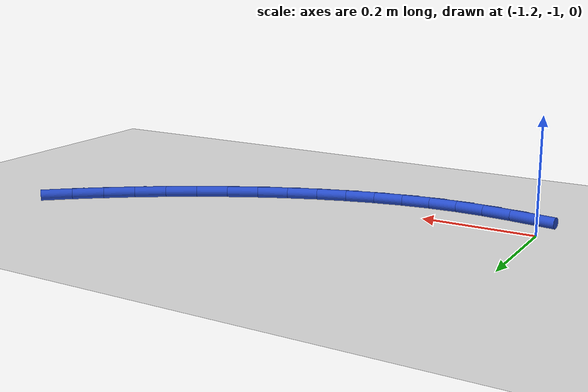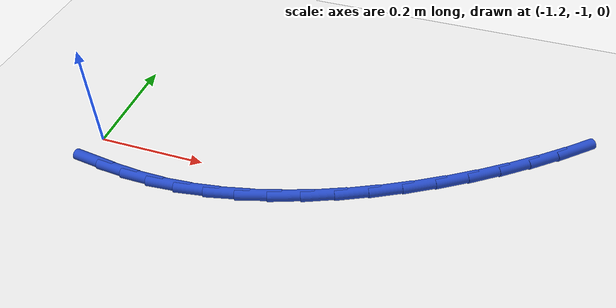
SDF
<sdf version="1.6">
 <world name="default">
  <model name="ground_plane">
   <static>1</static>
   <link name="link">
    <collision name="collision">
     <geometry><plane><normal>0 0 1</normal><size>100 100</size></plane></geometry>
     <surface><friction><ode><mu>100</mu><mu2>50</mu2></ode></friction></surface>
    </collision>
    <visual name="visual">
     <cast_shadows>0</cast_shadows>
     <geometry><plane><normal>0 0 1</normal><size>100 100</size></plane></geometry>
     <material>
      <script><uri>file://media/materials/scripts/gazebo.material</uri><name>Gazebo/WhiteGlow</name></script>
     </material>
    </visual>
   </link>
  </model>
  <model name="line">
   <link name="link_98">
    <pose>-1.177144933235341 -1.060810933098437 0.01 0 1.57 -0.12839074121004715</pose>
    <collision name="collision">
     <geometry><cylinder><radius>0.01</radius><length>0.08</length></cylinder></geometry>
    </collision>
    <visual name="visual">
     <material>
      <script><name>Gazebo/Blue</name><uri>file://media/materials/scripts/gazebo.material</uri></script>
     </material>
     <geometry><cylinder><radius>0.01</radius><length>0.08</length></cylinder></geometry>
    </visual>
   </link>
   <link name="link_99">
    <pose>-1.1265392238161747 -1.0673441755393793 0.01 0 1.57 -0.07483204554949298</pose>
    <collision name="collision">
     <geometry><cylinder><radius>0.01</radius><length>0.08</length></cylinder></geometry>
    </collision>
    <visual name="visual">
     <material>
      <script><name>Gazebo/Blue</name><uri>file://media/materials/scripts/gazebo.material</uri></script>
     </material>
     <geometry><cylinder><radius>0.01</radius><length>0.08</length></cylinder></geometry>
    </visual>
   </link>
   <link name="link_100">
    <pose>-1.0765734018265705 -1.0710902152196582 0.01 0 1.57 -0.003822855041589183</pose>
    <collision name="collision">
     <geometry><cylinder><radius>0.01</radius><length>0.08</length></cylinder></geometry>
    </collision>
    <visual name="visual">
     <material>
      <script><name>Gazebo/Blue</name><uri>file://media/materials/scripts/gazebo.material</uri></script>
     </material>
     <geometry><cylinder><radius>0.01</radius><length>0.08</length></cylinder></geometry>
    </visual>
   </link>
   <link name="link_101">
    <pose>-1.0264248365463982 -1.0712819268491742 0.01 0 1.57 0.07756396724133488</pose>
    <collision name="collision">
     <geometry><cylinder><radius>0.01</radius><length>0.08</length></cylinder></geometry>
    </collision>
    <visual name="visual">
     <material>
      <script><name>Gazebo/Blue</name><uri>file://media/materials/scripts/gazebo.material</uri></script>
     </material>
     <geometry><cylinder><radius>0.01</radius><length>0.08</length></cylinder></geometry>
    </visual>
   </link>
   <link name="link_102">
    <pose>-0.9754451178149918 -1.0673197887961465 0.01 0 1.57 0.15400908249825607</pose>
    <collision name="collision">
     <geometry><cylinder><radius>0.01</radius><length>0.08</length></cylinder></geometry>
    </collision>
    <visual name="visual">
     <material>
      <script><name>Gazebo/Blue</name><uri>file://media/materials/scripts/gazebo.material</uri></script>
     </material>
     <geometry><cylinder><radius>0.01</radius><length>0.08</length></cylinder></geometry>
    </visual>
   </link>
   <link name="link_103">
    <pose>-0.9236945962793283 -1.0592861214834823 0.01 0 1.57 0.22288574865361663</pose>
    <collision name="collision">
     <geometry><cylinder><radius>0.01</radius><length>0.08</length></cylinder></geometry>
    </collision>
    <visual name="visual">
     <material>
      <script><name>Gazebo/Blue</name><uri>file://media/materials/scripts/gazebo.material</uri></script>
     </material>
     <geometry><cylinder><radius>0.01</radius><length>0.08</length></cylinder></geometry>
    </visual>
   </link>
   <link name="link_104">
    <pose>-0.8714138328742536 -1.0474366112307814 0.01 0 1.57 0.2851367997100668</pose>
    <collision name="collision">
     <geometry><cylinder><radius>0.01</radius><length>0.08</length></cylinder></geometry>
    </collision>
    <visual name="visual">
     <material>
      <script><name>Gazebo/Blue</name><uri>file://media/materials/scripts/gazebo.material</uri></script>
     </material>
     <geometry><cylinder><radius>0.01</radius><length>0.08</length></cylinder></geometry>
    </visual>
   </link>
   <link name="link_105">
    <pose>-0.8188433885663 -1.0320269443881256 0.01 0 1.57 0.3416991483742053</pose>
    <collision name="collision">
     <geometry><cylinder><radius>0.01</radius><length>0.08</length></cylinder></geometry>
    </collision>
    <visual name="visual">
     <material>
      <script><name>Gazebo/Blue</name><uri>file://media/materials/scripts/gazebo.material</uri></script>
     </material>
     <geometry><cylinder><radius>0.01</radius><length>0.08</length></cylinder></geometry>
    </visual>
   </link>
   <link name="link_106">
    <pose>-0.7662238243219998 -1.0133128073055973 0.01 0 1.57 0.39345558066015374</pose>
    <collision name="collision">
     <geometry><cylinder><radius>0.01</radius><length>0.08</length></cylinder></geometry>
    </collision>
    <visual name="visual">
     <material>
      <script><name>Gazebo/Blue</name><uri>file://media/materials/scripts/gazebo.material</uri></script>
     </material>
     <geometry><cylinder><radius>0.01</radius><length>0.08</length></cylinder></geometry>
    </visual>
   </link>
   <link name="link_107">
    <pose>-0.7137957011078851 -0.991549886333279 0.01 0 1.57 0.44121556361931963</pose>
    <collision name="collision">
     <geometry><cylinder><radius>0.01</radius><length>0.08</length></cylinder></geometry>
    </collision>
    <visual name="visual">
     <material>
      <script><name>Gazebo/Blue</name><uri>file://media/materials/scripts/gazebo.material</uri></script>
     </material>
     <geometry><cylinder><radius>0.01</radius><length>0.08</length></cylinder></geometry>
    </visual>
   </link>
   <link name="link_108">
    <pose>-0.6617995798904888 -0.9669938678212526 0.01 0 1.57 0.485713466606233</pose>
    <collision name="collision">
     <geometry><cylinder><radius>0.01</radius><length>0.08</length></cylinder></geometry>
    </collision>
    <visual name="visual">
     <material>
      <script><name>Gazebo/Blue</name><uri>file://media/materials/scripts/gazebo.material</uri></script>
     </material>
     <geometry><cylinder><radius>0.01</radius><length>0.08</length></cylinder></geometry>
    </visual>
   </link>
   <link name="link_109">
    <pose>-0.6104760216363427 -0.9399004381196004 0.01 0 1.57 0.5276165060935993</pose>
    <collision name="collision">
     <geometry><cylinder><radius>0.01</radius><length>0.08</length></cylinder></geometry>
    </collision>
    <visual name="visual">
     <material>
      <script><name>Gazebo/Blue</name><uri>file://media/materials/scripts/gazebo.material</uri></script>
     </material>
     <geometry><cylinder><radius>0.01</radius><length>0.08</length></cylinder></geometry>
    </visual>
   </link>
   <link name="link_110">
    <pose>-0.5600655873119788 -0.9105252835784046 0.01 0 1.57 0.5675378452145454</pose>
    <collision name="collision">
     <geometry><cylinder><radius>0.01</radius><length>0.08</length></cylinder></geometry>
    </collision>
    <visual name="visual">
     <material>
      <script><name>Gazebo/Blue</name><uri>file://media/materials/scripts/gazebo.material</uri></script>
     </material>
     <geometry><cylinder><radius>0.01</radius><length>0.08</length></cylinder></geometry>
    </visual>
   </link>
   <link name="link_111">
    <pose>-0.5108088378839303 -0.8791240905477474 0.01 0 1.57 0.6060524581276261</pose>
    <collision name="collision">
     <geometry><cylinder><radius>0.01</radius><length>0.08</length></cylinder></geometry>
    </collision>
    <visual name="visual">
     <material>
      <script><name>Gazebo/Blue</name><uri>file://media/materials/scripts/gazebo.material</uri></script>
     </material>
     <geometry><cylinder><radius>0.01</radius><length>0.08</length></cylinder></geometry>
    </visual>
   </link>
   <link name="link_112">
    <pose>-0.462946334318729 -0.8459525453777113 0.01 0 1.57 0.6437331537759443</pose>
    <collision name="collision">
     <geometry><cylinder><radius>0.01</radius><length>0.08</length></cylinder></geometry>
    </collision>
    <visual name="visual">
     <material>
      <script><name>Gazebo/Blue</name><uri>file://media/materials/scripts/gazebo.material</uri></script>
     </material>
     <geometry><cylinder><radius>0.01</radius><length>0.08</length></cylinder></geometry>
    </visual>
   </link>
   <link name="link_113">
    <pose>-0.4167179119703037 -0.8112644646463103 0.01 0 1.57 0.682174488301004</pose>
    <collision name="collision">
     <geometry><cylinder><radius>0.01</radius><length>0.08</length></cylinder></geometry>
    </collision>
    <visual name="visual">
     <material>
      <script><name>Gazebo/Blue</name><uri>file://media/materials/scripts/gazebo.material</uri></script>
     </material>
     <geometry><cylinder><radius>0.01</radius><length>0.08</length></cylinder></geometry>
    </visual>
   </link>
   <link name="link_114">
    <pose>-0.37231989588507125 -0.775201546760992 0.01 0 1.57 0.7232956375262102</pose>
    <collision name="collision">
     <geometry><cylinder><radius>0.01</radius><length>0.08</length></cylinder></geometry>
    </collision>
    <visual name="visual">
     <material>
      <script><name>Gazebo/Blue</name><uri>file://media/materials/scripts/gazebo.material</uri></script>
     </material>
     <geometry><cylinder><radius>0.01</radius><length>0.08</length></cylinder></geometry>
    </visual>
   </link>
  </model>
 </world>
</sdf>
